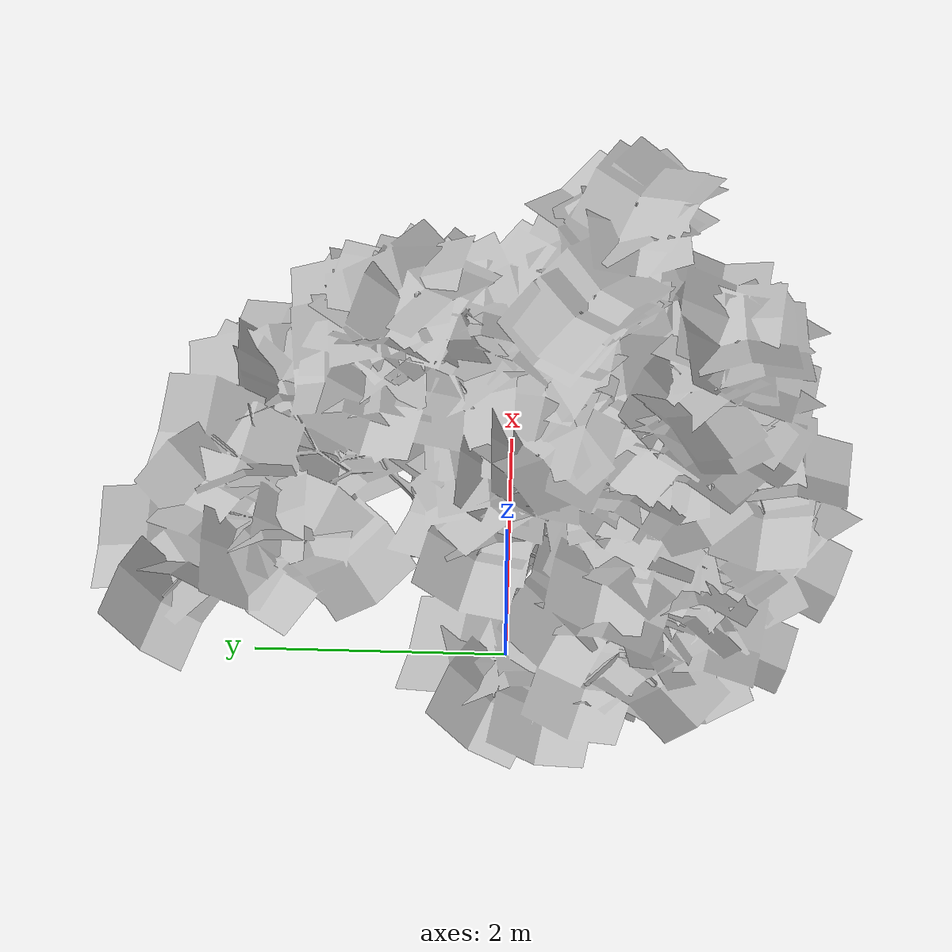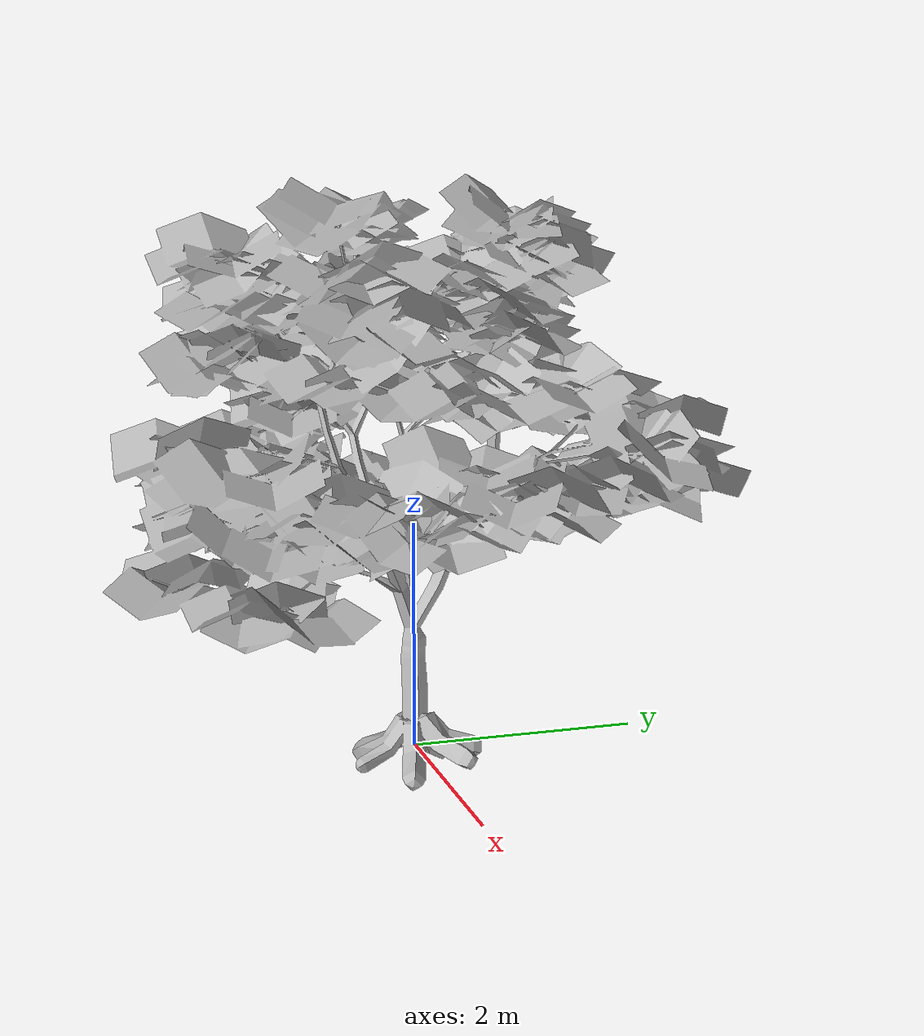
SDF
<?xml version="1.0" ?>
<sdf version="1.5">
  <model name="Tree 1">
    <static>true</static>
    <pose frame=''>0 0 0 1.57079 0 0</pose>
    <link name="link">
      <pose frame=''>0 0 0 0 0 0</pose>
      <collision name="collision">
        <geometry>
          <mesh>
            <scale>5 5 5</scale>
            <uri>model://tree_1/meshes/tree_1.obj</uri>
          </mesh>
        </geometry>
      </collision>
      <visual name="visual">
        <geometry>
          <mesh>

            <scale>5 5 5</scale>
            <uri>model://tree_1/meshes/tree_1.obj</uri>
          </mesh>
        </geometry>
      </visual>
    </link>
  </model>
</sdf>
